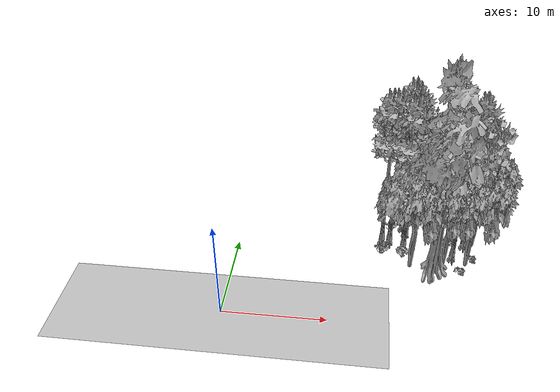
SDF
<sdf version="1.7">
 <world name="default">
  <model name="ground_plane">
   <static>1</static>
   <link name="link">
    <collision name="collision">
     <geometry><plane><normal>0 0 1</normal><size>100 100</size></plane></geometry>
     <surface><contact><ode><min_depth>0.01</min_depth><max_vel>0</max_vel></ode></contact></surface>
    </collision>
    <visual name="grass">
     <cast_shadows>0</cast_shadows>
     <geometry>
      <mesh>
       <scale>0.5814285714285714 0.18142857142857144 0.1</scale>
       <uri>file://grass_plane/meshes/grass_plane.dae</uri>
      </mesh>
     </geometry>
    </visual>
   </link>
  </model>
  <model name="Tree 19">
   <static>1</static>
   <pose>24.21214976506458 12.339405180876014 0 1.57079 -0 0</pose>
   <link name="link">
    <collision name="collision">
     <geometry><mesh><scale>3.5 5 3.5</scale><uri>model://tree_2/meshes/tree_2.obj</uri></mesh></geometry>
    </collision>
    <visual name="visual">
     <geometry><mesh><scale>3.5 5 3.5</scale><uri>model://tree_2/meshes/tree_2.obj</uri></mesh></geometry>
    </visual>
   </link>
  </model>
  <model name="Tree 28">
   <static>1</static>
   <pose>18.0387552859804 10.684780523896539 0 1.57079 -0 0</pose>
   <link name="link">
    <collision name="collision">
     <geometry><mesh><scale>3.5 5 3.5</scale><uri>model://tree_2/meshes/tree_2.obj</uri></mesh></geometry>
    </collision>
    <visual name="visual">
     <geometry><mesh><scale>3.5 5 3.5</scale><uri>model://tree_2/meshes/tree_2.obj</uri></mesh></geometry>
    </visual>
   </link>
  </model>
  <model name="Tree 52">
   <static>1</static>
   <pose>15.725537501464459 12.137809315026288 0 1.57079 -0 0</pose>
   <link name="link">
    <collision name="collision">
     <geometry><mesh><scale>3.5 5 3.5</scale><uri>model://tree_9/meshes/tree_9.obj</uri></mesh></geometry>
    </collision>
    <visual name="visual">
     <geometry><mesh><scale>3.5 5 3.5</scale><uri>model://tree_9/meshes/tree_9.obj</uri></mesh></geometry>
    </visual>
   </link>
  </model>
  <model name="Tree 62">
   <static>1</static>
   <pose>17.12574778117248 14.57087930836543 0 1.57079 -0 0</pose>
   <link name="link">
    <collision name="collision">
     <geometry><mesh><scale>3.5 5 3.5</scale><uri>model://tree_9/meshes/tree_9.obj</uri></mesh></geometry>
    </collision>
    <visual name="visual">
     <geometry><mesh><scale>3.5 5 3.5</scale><uri>model://tree_9/meshes/tree_9.obj</uri></mesh></geometry>
    </visual>
   </link>
  </model>
  <model name="Tree 81">
   <static>1</static>
   <pose>22.108110100790796 10.222466847329361 0 1.57079 -0 0</pose>
   <link name="link">
    <collision name="collision">
     <geometry><mesh><scale>3.5 5 3.5</scale><uri>model://tree_9/meshes/tree_9.obj</uri></mesh></geometry>
    </collision>
    <visual name="visual">
     <geometry><mesh><scale>3.5 5 3.5</scale><uri>model://tree_9/meshes/tree_9.obj</uri></mesh></geometry>
    </visual>
   </link>
  </model>
  <model name="Tree 103">
   <static>1</static>
   <pose>17.462938514644094 13.553321008255551 0 1.57079 -0 0</pose>
   <link name="link">
    <collision name="collision">
     <geometry><mesh><scale>3.5 5 3.5</scale><uri>model://tree_9/meshes/tree_9.obj</uri></mesh></geometry>
    </collision>
    <visual name="visual">
     <geometry><mesh><scale>3.5 5 3.5</scale><uri>model://tree_9/meshes/tree_9.obj</uri></mesh></geometry>
    </visual>
   </link>
  </model>
  <model name="Tree 161">
   <static>1</static>
   <pose>23.452176723585353 12.339215601109498 0 1.57079 -0 0</pose>
   <link name="link">
    <collision name="collision">
     <geometry><mesh><scale>3.5 5 3.5</scale><uri>model://tree_9/meshes/tree_9.obj</uri></mesh></geometry>
    </collision>
    <visual name="visual">
     <geometry><mesh><scale>3.5 5 3.5</scale><uri>model://tree_9/meshes/tree_9.obj</uri></mesh></geometry>
    </visual>
   </link>
  </model>
  <model name="Tree 198">
   <static>1</static>
   <pose>17.161531166335422 11.311441772040087 0 1.57079 -0 0</pose>
   <link name="link">
    <collision name="collision">
     <geometry><mesh><scale>3.5 5 3.5</scale><uri>model://tree_9/meshes/tree_9.obj</uri></mesh></geometry>
    </collision>
    <visual name="visual">
     <geometry><mesh><scale>3.5 5 3.5</scale><uri>model://tree_9/meshes/tree_9.obj</uri></mesh></geometry>
    </visual>
   </link>
  </model>
  <model name="Tree 296">
   <static>1</static>
   <pose>21.04560198640543 9.127523825166218 0 1.57079 -0 0</pose>
   <link name="link">
    <collision name="collision">
     <geometry><mesh><scale>3.5 5 3.5</scale><uri>model://tree_2/meshes/tree_2.obj</uri></mesh></geometry>
    </collision>
    <visual name="visual">
     <geometry><mesh><scale>3.5 5 3.5</scale><uri>model://tree_2/meshes/tree_2.obj</uri></mesh></geometry>
    </visual>
   </link>
  </model>
  <model name="Tree 354">
   <static>1</static>
   <pose>23.271862077747542 9.202965685530671 0 1.57079 -0 0</pose>
   <link name="link">
    <collision name="collision">
     <geometry><mesh><scale>3.5 5 3.5</scale><uri>model://tree_2/meshes/tree_2.obj</uri></mesh></geometry>
    </collision>
    <visual name="visual">
     <geometry><mesh><scale>3.5 5 3.5</scale><uri>model://tree_2/meshes/tree_2.obj</uri></mesh></geometry>
    </visual>
   </link>
  </model>
  <model name="Tree 364">
   <static>1</static>
   <pose>17.67757741203519 8.399630058925876 0 1.57079 -0 0</pose>
   <link name="link">
    <collision name="collision">
     <geometry><mesh><scale>3.5 5 3.5</scale><uri>model://tree_2/meshes/tree_2.obj</uri></mesh></geometry>
    </collision>
    <visual name="visual">
     <geometry><mesh><scale>3.5 5 3.5</scale><uri>model://tree_2/meshes/tree_2.obj</uri></mesh></geometry>
    </visual>
   </link>
  </model>
  <model name="Tree 445">
   <static>1</static>
   <pose>19.84082536408758 9.178482410161767 0 1.57079 -0 0</pose>
   <link name="link">
    <collision name="collision">
     <geometry><mesh><scale>3.5 5 3.5</scale><uri>model://tree_2/meshes/tree_2.obj</uri></mesh></geometry>
    </collision>
    <visual name="visual">
     <geometry><mesh><scale>3.5 5 3.5</scale><uri>model://tree_2/meshes/tree_2.obj</uri></mesh></geometry>
    </visual>
   </link>
  </model>
  <model name="Tree 446">
   <static>1</static>
   <pose>19.983761868261766 8.01780766768207 0 1.57079 -0 0</pose>
   <link name="link">
    <collision name="collision">
     <geometry><mesh><scale>3.5 5 3.5</scale><uri>model://tree_4/meshes/tree_4.obj</uri></mesh></geometry>
    </collision>
    <visual name="visual">
     <geometry><mesh><scale>3.5 5 3.5</scale><uri>model://tree_4/meshes/tree_4.obj</uri></mesh></geometry>
    </visual>
   </link>
  </model>
  <model name="Tree 449">
   <static>1</static>
   <pose>14.920450986498174 11.964285164113846 0 1.57079 -0 0</pose>
   <link name="link">
    <collision name="collision">
     <geometry><mesh><scale>3.5 5 3.5</scale><uri>model://tree_9/meshes/tree_9.obj</uri></mesh></geometry>
    </collision>
    <visual name="visual">
     <geometry><mesh><scale>3.5 5 3.5</scale><uri>model://tree_9/meshes/tree_9.obj</uri></mesh></geometry>
    </visual>
   </link>
  </model>
  <model name="Bush 22">
   <static>1</static>
   <pose>17.569315540507205 14.0381724099299 0 1.57079 -0 0</pose>
   <link name="link">
    <collision name="collision">
     <geometry><mesh><scale>2 2 2</scale><uri>model://bush_5/meshes/bush_5.obj</uri></mesh></geometry>
     <surface><contact><collide_without_contact>false</collide_without_contact></contact></surface>
    </collision>
    <visual name="visual">
     <geometry><mesh><scale>2 2 2</scale><uri>model://bush_5/meshes/bush_5.obj</uri></mesh></geometry>
    </visual>
   </link>
  </model>
  <model name="Bush 42">
   <static>1</static>
   <pose>15.82938607463312 13.944427403660342 0 1.57079 -0 0</pose>
   <link name="link">
    <collision name="collision">
     <geometry><mesh><scale>2 2 2</scale><uri>model://bush_4/meshes/bush_4.obj</uri></mesh></geometry>
     <surface><contact><collide_without_contact>false</collide_without_contact></contact></surface>
    </collision>
    <visual name="visual">
     <geometry><mesh><scale>2 2 2</scale><uri>model://bush_4/meshes/bush_4.obj</uri></mesh></geometry>
    </visual>
   </link>
  </model>
  <model name="Bush 67">
   <static>1</static>
   <pose>23.99202536318805 10.028498896204844 0 1.57079 -0 0</pose>
   <link name="link">
    <collision name="collision">
     <geometry><mesh><scale>2 2 2</scale><uri>model://bush_2/meshes/bush_2.obj</uri></mesh></geometry>
     <surface><contact><collide_without_contact>false</collide_without_contact></contact></surface>
    </collision>
    <visual name="visual">
     <geometry><mesh><scale>2 2 2</scale><uri>model://bush_2/meshes/bush_2.obj</uri></mesh></geometry>
    </visual>
   </link>
  </model>
  <model name="Bush 126">
   <static>1</static>
   <pose>14.896564671030092 10.043173348514564 0 1.57079 -0 0</pose>
   <link name="link">
    <collision name="collision">
     <geometry><mesh><scale>2 2 2</scale><uri>model://bush_4/meshes/bush_4.obj</uri></mesh></geometry>
     <surface><contact><collide_without_contact>false</collide_without_contact></contact></surface>
    </collision>
    <visual name="visual">
     <geometry><mesh><scale>2 2 2</scale><uri>model://bush_4/meshes/bush_4.obj</uri></mesh></geometry>
    </visual>
   </link>
  </model>
  <model name="Bush 152">
   <static>1</static>
   <pose>17.056691137269794 10.078703021264797 0 1.57079 -0 0</pose>
   <link name="link">
    <collision name="collision">
     <geometry><mesh><scale>2 2 2</scale><uri>model://bush_3/meshes/bush_3.obj</uri></mesh></geometry>
     <surface><contact><collide_without_contact>false</collide_without_contact></contact></surface>
    </collision>
    <visual name="visual">
     <geometry><mesh><scale>2 2 2</scale><uri>model://bush_3/meshes/bush_3.obj</uri></mesh></geometry>
    </visual>
   </link>
  </model>
  <model name="Bush 187">
   <static>1</static>
   <pose>21.47706863996889 12.050995562448026 0 1.57079 -0 0</pose>
   <link name="link">
    <collision name="collision">
     <geometry><mesh><scale>2 2 2</scale><uri>model://bush_3/meshes/bush_3.obj</uri></mesh></geometry>
     <surface><contact><collide_without_contact>false</collide_without_contact></contact></surface>
    </collision>
    <visual name="visual">
     <geometry><mesh><scale>2 2 2</scale><uri>model://bush_3/meshes/bush_3.obj</uri></mesh></geometry>
    </visual>
   </link>
  </model>
  <model name="Bush 270">
   <static>1</static>
   <pose>22.10020215041422 12.439676843661964 0 1.57079 -0 0</pose>
   <link name="link">
    <collision name="collision">
     <geometry><mesh><scale>2 2 2</scale><uri>model://bush_3/meshes/bush_3.obj</uri></mesh></geometry>
     <surface><contact><collide_without_contact>false</collide_without_contact></contact></surface>
    </collision>
    <visual name="visual">
     <geometry><mesh><scale>2 2 2</scale><uri>model://bush_3/meshes/bush_3.obj</uri></mesh></geometry>
    </visual>
   </link>
  </model>
  <model name="Bush 336">
   <static>1</static>
   <pose>22.691528431306494 8.073767050190312 0 1.57079 -0 0</pose>
   <link name="link">
    <collision name="collision">
     <geometry><mesh><scale>2 2 2</scale><uri>model://bush_2/meshes/bush_2.obj</uri></mesh></geometry>
     <surface><contact><collide_without_contact>false</collide_without_contact></contact></surface>
    </collision>
    <visual name="visual">
     <geometry><mesh><scale>2 2 2</scale><uri>model://bush_2/meshes/bush_2.obj</uri></mesh></geometry>
    </visual>
   </link>
  </model>
 </world>
</sdf>
